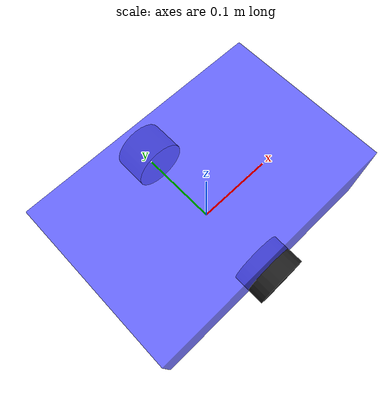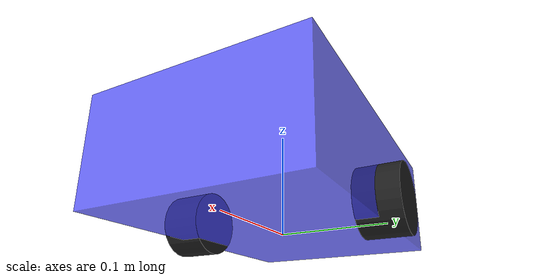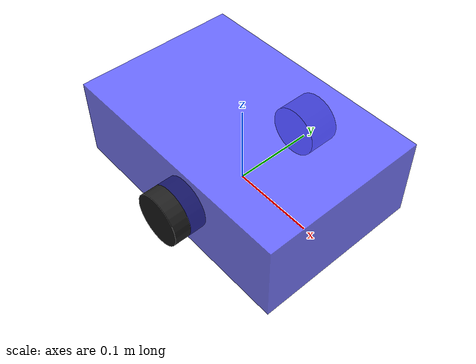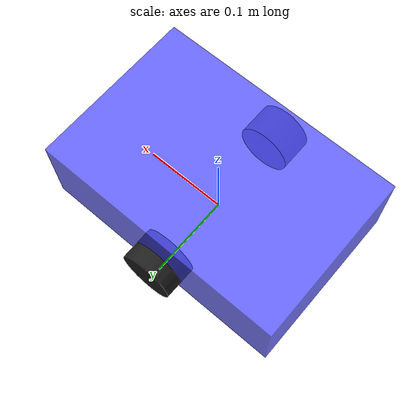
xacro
<?xml version="1.0"?>
<robot xmlns:xacro="http://www.ros.org/wiki/xacro" name="robot">

  <!-- 必须先有质量，防止被 Gazebo 吃掉 -->
  <link name="base_footprint">
    <inertial>
      <mass value="0.001"/>
      <inertia ixx="0.001" iyy="0.001" izz="0.001" ixy="0" ixz="0" iyz="0"/>
    </inertial>
  </link>

  <!-- 所有 link -->
  <link name="base_link">
    <visual>
      <geometry><box size="0.3 0.2 0.1"/></geometry>
      <material name="blue"><color rgba="0.3 0.3 1.0 0.8"/></material>
    </visual>
    <collision><geometry><box size="0.3 0.2 0.1"/></geometry></collision>
    <inertial><mass value="2.0"/><inertia ixx="0.05" iyy="0.05" izz="0.05"/></inertial>
  </link>

  <link name="left_wheel_link">
    <visual>
      <origin rpy="1.5708 0 0"/>
      <geometry><cylinder radius="0.032" length="0.04"/></geometry>
      <material name="black"/>
    </visual>
    <collision>
      <origin rpy="1.5708 0 0"/>
      <geometry><cylinder radius="0.032" length="0.04"/></geometry>
    </collision>
    <inertial>
      <origin rpy="1.5708 0 0"/>
      <mass value="0.2"/>
      <inertia ixx="0.00036" iyy="0.0001904" izz="0.00036"/>
    </inertial>
  </link>

  <link name="right_wheel_link">
    <visual>
      <origin rpy="1.5708 0 0"/>
      <geometry><cylinder radius="0.032" length="0.04"/></geometry>
      <material name="black"/>
    </visual>
    <collision>
      <origin rpy="1.5708 0 0"/>
      <geometry><cylinder radius="0.032" length="0.04"/></geometry>
    </collision>
    <inertial>
      <origin rpy="1.5708 0 0"/>
      <mass value="0.2"/>
      <inertia ixx="0.00036" iyy="0.0001904" izz="0.00036"/>
    </inertial>
  </link>

  <!-- 所有 joint（顺序无所谓了） -->
  <joint name="base_joint" type="fixed">
    <parent link="base_footprint"/>
    <child link="base_link"/>
    <origin xyz="0 0 0.05"/>
  </joint>

  <joint name="left_wheel_joint" type="continuous">
    <parent link="base_link"/>
    <child link="left_wheel_link"/>
    <origin xyz="0 0.10 -0.03"/>
    <axis xyz="0 1 0"/>
    <dynamics damping="0.1" friction="0.1"/>
  </joint>

  <joint name="right_wheel_joint" type="continuous">
    <parent link="base_link"/>
    <child link="right_wheel_link"/>
    <origin xyz="0 -0.10 -0.03"/>
    <axis xyz="0 1 0"/>
    <dynamics damping="0.1" friction="0.1"/>
  </joint>

  <!-- 差速驱动插件 -->
  <gazebo>
    <plugin filename="gz-sim-diff-drive-system" name="gz::sim::systems::DiffDrive">
      <left_joint>left_wheel_joint</left_joint>
      <right_joint>right_wheel_joint</right_joint>
      <wheel_separation>0.20</wheel_separation>
      <wheel_diameter>0.064</wheel_diameter>
      <publish_odom>true</publish_odom>
      <publish_odom_tf>true</publish_odom_tf>
      <odometry_frame>odom</odometry_frame>
      <robot_base_frame>base_footprint</robot_base_frame>
      <odom_publisher_frequency>50</odom_publisher_frequency>
    </plugin>
  </gazebo>

</robot>
